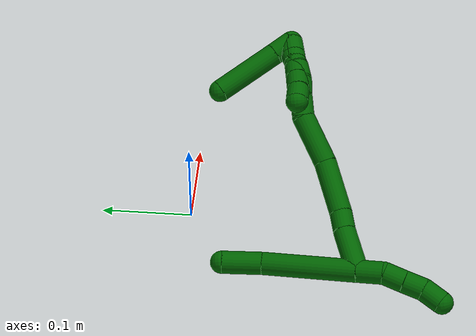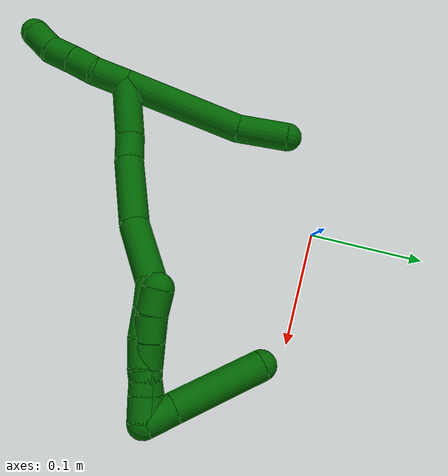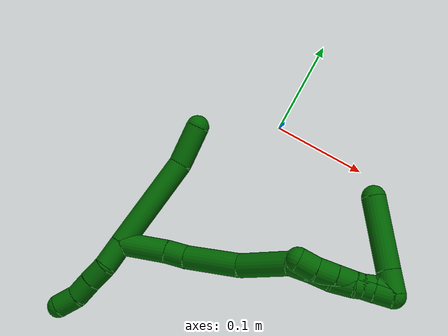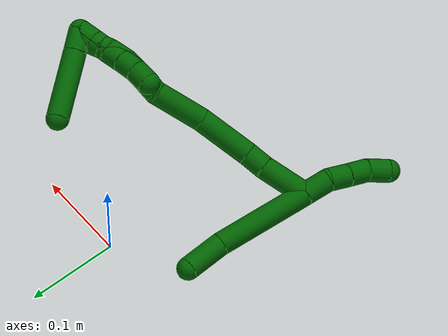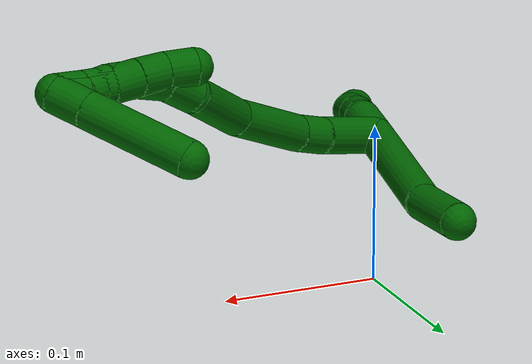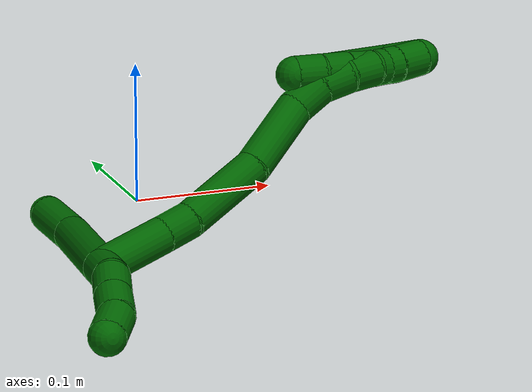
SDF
<sdf version="1.7">
 <world name="default">
  <model name="6">
   <static>0</static>
   <link name="6">
    <collision name="collision-cylinder-e_1_2_8">
     <pose>0.006492 0.005232 -0.052003 -3.04131 0.123583 -1.77869</pose>
     <geometry><cylinder><radius>0.0125</radius><length>0.105333</length></cylinder></geometry>
     <surface>
      <friction><ode><mu>1.16</mu><mu2>1.16</mu2><slip1>0</slip1><slip2>0</slip2></ode></friction>
      <contact><ode><kp>1e+06</kp><kd>1</kd><max_vel>0</max_vel><min_depth>0.001</min_depth></ode></contact>
     </surface>
    </collision>
    <visual name="visual-cylinder-e_1_2_8">
     <pose>0.006492 0.005232 -0.052003 -3.04131 0.123583 -1.77869</pose>
     <geometry><cylinder><radius>0.0125</radius><length>0.105333</length></cylinder></geometry>
     <material><ambient>0 0.392157 0.003922 1</ambient></material>
    </visual>
    <collision name="collision-cylinder-e_2_8_6">
     <pose>0.011814 0.016071 -0.125591 -2.88749 -0.05243 0.404915</pose>
     <geometry><cylinder><radius>0.0125</radius><length>0.044667</length></cylinder></geometry>
     <surface>
      <friction><ode><mu>1.16</mu><mu2>1.16</mu2><slip1>0</slip1><slip2>0</slip2></ode></friction>
      <contact><ode><kp>1e+06</kp><kd>1</kd><max_vel>0</max_vel><min_depth>0.001</min_depth></ode></contact>
     </surface>
    </collision>
    <visual name="visual-cylinder-e_2_8_6">
     <pose>0.011814 0.016071 -0.125591 -2.88749 -0.05243 0.404915</pose>
     <geometry><cylinder><radius>0.0125</radius><length>0.044667</length></cylinder></geometry>
     <material><ambient>0 0.392157 0.003922 1</ambient></material>
    </visual>
    <collision name="collision-cylinder-e_1_2_9">
     <pose>-0.001646 -0.00152 0.014463 0.1047 -0.112736 -0.005913</pose>
     <geometry><cylinder><radius>0.0125</radius><length>0.029272</length></cylinder></geometry>
     <surface>
      <friction><ode><mu>1.16</mu><mu2>1.16</mu2><slip1>0</slip1><slip2>0</slip2></ode></friction>
      <contact><ode><kp>1e+06</kp><kd>1</kd><max_vel>0</max_vel><min_depth>0.001</min_depth></ode></contact>
     </surface>
    </collision>
    <visual name="visual-cylinder-e_1_2_9">
     <pose>-0.001646 -0.00152 0.014463 0.1047 -0.112736 -0.005913</pose>
     <geometry><cylinder><radius>0.0125</radius><length>0.029272</length></cylinder></geometry>
     <material><ambient>0 0.392157 0.003922 1</ambient></material>
    </visual>
    <collision name="collision-cylinder-e_2_9_10">
     <pose>-0.006713 -0.007409 0.039119 0.404997 -0.299159 -0.061864</pose>
     <geometry><cylinder><radius>0.0125</radius><length>0.023211</length></cylinder></geometry>
     <surface>
      <friction><ode><mu>1.16</mu><mu2>1.16</mu2><slip1>0</slip1><slip2>0</slip2></ode></friction>
      <contact><ode><kp>1e+06</kp><kd>1</kd><max_vel>0</max_vel><min_depth>0.001</min_depth></ode></contact>
     </surface>
    </collision>
    <visual name="visual-cylinder-e_2_9_10">
     <pose>-0.006713 -0.007409 0.039119 0.404997 -0.299159 -0.061864</pose>
     <geometry><cylinder><radius>0.0125</radius><length>0.023211</length></cylinder></geometry>
     <material><ambient>0 0.392157 0.003922 1</ambient></material>
    </visual>
    <collision name="collision-cylinder-e_3_10_11">
     <pose>-0.01314 -0.01647 0.059556 0.429404 -0.26079 -0.057178</pose>
     <geometry><cylinder><radius>0.0125</radius><length>0.023323</length></cylinder></geometry>
     <surface>
      <friction><ode><mu>1.16</mu><mu2>1.16</mu2><slip1>0</slip1><slip2>0</slip2></ode></friction>
      <contact><ode><kp>1e+06</kp><kd>1</kd><max_vel>0</max_vel><min_depth>0.001</min_depth></ode></contact>
     </surface>
    </collision>
    <visual name="visual-cylinder-e_3_10_11">
     <pose>-0.01314 -0.01647 0.059556 0.429404 -0.26079 -0.057178</pose>
     <geometry><cylinder><radius>0.0125</radius><length>0.023323</length></cylinder></geometry>
     <material><ambient>0 0.392157 0.003922 1</ambient></material>
    </visual>
    <collision name="collision-cylinder-e_4_11_5">
     <pose>-0.022764 -0.025319 0.079034 0.423156 -0.578772 -0.127733</pose>
     <geometry><cylinder><radius>0.0125</radius><length>0.024195</length></cylinder></geometry>
     <surface>
      <friction><ode><mu>1.16</mu><mu2>1.16</mu2><slip1>0</slip1><slip2>0</slip2></ode></friction>
      <contact><ode><kp>1e+06</kp><kd>1</kd><max_vel>0</max_vel><min_depth>0.001</min_depth></ode></contact>
     </surface>
    </collision>
    <visual name="visual-cylinder-e_4_11_5">
     <pose>-0.022764 -0.025319 0.079034 0.423156 -0.578772 -0.127733</pose>
     <geometry><cylinder><radius>0.0125</radius><length>0.024195</length></cylinder></geometry>
     <material><ambient>0 0.392157 0.003922 1</ambient></material>
    </visual>
    <collision name="collision-cylinder-e_1_2_12">
     <pose>0.024053 0.004883 -0.007222 -2.5471 1.22306 -2.31786</pose>
     <geometry><cylinder><radius>0.0125</radius><length>0.051168</length></cylinder></geometry>
     <surface>
      <friction><ode><mu>1.16</mu><mu2>1.16</mu2><slip1>0</slip1><slip2>0</slip2></ode></friction>
      <contact><ode><kp>1e+06</kp><kd>1</kd><max_vel>0</max_vel><min_depth>0.001</min_depth></ode></contact>
     </surface>
    </collision>
    <visual name="visual-cylinder-e_1_2_12">
     <pose>0.024053 0.004883 -0.007222 -2.5471 1.22306 -2.31786</pose>
     <geometry><cylinder><radius>0.0125</radius><length>0.051168</length></cylinder></geometry>
     <material><ambient>0 0.392157 0.003922 1</ambient></material>
    </visual>
    <collision name="collision-cylinder-e_2_12_13">
     <pose>0.058891 0.012419 -0.016505 -2.23099 1.26892 -1.96754</pose>
     <geometry><cylinder><radius>0.0125</radius><length>0.022592</length></cylinder></geometry>
     <surface>
      <friction><ode><mu>1.16</mu><mu2>1.16</mu2><slip1>0</slip1><slip2>0</slip2></ode></friction>
      <contact><ode><kp>1e+06</kp><kd>1</kd><max_vel>0</max_vel><min_depth>0.001</min_depth></ode></contact>
     </surface>
    </collision>
    <visual name="visual-cylinder-e_2_12_13">
     <pose>0.058891 0.012419 -0.016505 -2.23099 1.26892 -1.96754</pose>
     <geometry><cylinder><radius>0.0125</radius><length>0.022592</length></cylinder></geometry>
     <material><ambient>0 0.392157 0.003922 1</ambient></material>
    </visual>
    <collision name="collision-cylinder-e_3_13_14">
     <pose>0.096859 0.026578 -0.026394 -2.16832 1.0976 -1.715</pose>
     <geometry><cylinder><radius>0.0125</radius><length>0.061077</length></cylinder></geometry>
     <surface>
      <friction><ode><mu>1.16</mu><mu2>1.16</mu2><slip1>0</slip1><slip2>0</slip2></ode></friction>
      <contact><ode><kp>1e+06</kp><kd>1</kd><max_vel>0</max_vel><min_depth>0.001</min_depth></ode></contact>
     </surface>
    </collision>
    <visual name="visual-cylinder-e_3_13_14">
     <pose>0.096859 0.026578 -0.026394 -2.16832 1.0976 -1.715</pose>
     <geometry><cylinder><radius>0.0125</radius><length>0.061077</length></cylinder></geometry>
     <material><ambient>0 0.392157 0.003922 1</ambient></material>
    </visual>
    <collision name="collision-cylinder-e_4_14_15">
     <pose>0.145888 0.053184 -0.044804 -2.18197 0.86981 -1.45762</pose>
     <geometry><cylinder><radius>0.0125</radius><length>0.057175</length></cylinder></geometry>
     <surface>
      <friction><ode><mu>1.16</mu><mu2>1.16</mu2><slip1>0</slip1><slip2>0</slip2></ode></friction>
      <contact><ode><kp>1e+06</kp><kd>1</kd><max_vel>0</max_vel><min_depth>0.001</min_depth></ode></contact>
     </surface>
    </collision>
    <visual name="visual-cylinder-e_4_14_15">
     <pose>0.145888 0.053184 -0.044804 -2.18197 0.86981 -1.45762</pose>
     <geometry><cylinder><radius>0.0125</radius><length>0.057175</length></cylinder></geometry>
     <material><ambient>0 0.392157 0.003922 1</ambient></material>
    </visual>
    <collision name="collision-cylinder-e_5_15_16">
     <pose>0.178504 0.073759 -0.056083 -1.69765 1.0972 -1.21349</pose>
     <geometry><cylinder><radius>0.0125</radius><length>0.024203</length></cylinder></geometry>
     <surface>
      <friction><ode><mu>1.16</mu><mu2>1.16</mu2><slip1>0</slip1><slip2>0</slip2></ode></friction>
      <contact><ode><kp>1e+06</kp><kd>1</kd><max_vel>0</max_vel><min_depth>0.001</min_depth></ode></contact>
     </surface>
    </collision>
    <visual name="visual-cylinder-e_5_15_16">
     <pose>0.178504 0.073759 -0.056083 -1.69765 1.0972 -1.21349</pose>
     <geometry><cylinder><radius>0.0125</radius><length>0.024203</length></cylinder></geometry>
     <material><ambient>0 0.392157 0.003922 1</ambient></material>
    </visual>
    <collision name="collision-cylinder-e_6_16_17">
     <pose>0.199904 0.080791 -0.05741 -1.95423 1.41412 -1.80451</pose>
     <geometry><cylinder><radius>0.0125</radius><length>0.021525</length></cylinder></geometry>
     <surface>
      <friction><ode><mu>1.16</mu><mu2>1.16</mu2><slip1>0</slip1><slip2>0</slip2></ode></friction>
      <contact><ode><kp>1e+06</kp><kd>1</kd><max_vel>0</max_vel><min_depth>0.001</min_depth></ode></contact>
     </surface>
    </collision>
    <visual name="visual-cylinder-e_6_16_17">
     <pose>0.199904 0.080791 -0.05741 -1.95423 1.41412 -1.80451</pose>
     <geometry><cylinder><radius>0.0125</radius><length>0.021525</length></cylinder></geometry>
     <material><ambient>0 0.392157 0.003922 1</ambient></material>
    </visual>
    <collision name="collision-cylinder-e_7_17_18">
     <pose>0.220901 0.082618 -0.0606 -3.03693 1.32723 -3.00782</pose>
     <geometry><cylinder><radius>0.0125</radius><length>0.021362</length></cylinder></geometry>
     <surface>
      <friction><ode><mu>1.16</mu><mu2>1.16</mu2><slip1>0</slip1><slip2>0</slip2></ode></friction>
      <contact><ode><kp>1e+06</kp><kd>1</kd><max_vel>0</max_vel><min_depth>0.001</min_depth></ode></contact>
     </surface>
    </collision>
    <visual name="visual-cylinder-e_7_17_18">
     <pose>0.220901 0.082618 -0.0606 -3.03693 1.32723 -3.00782</pose>
     <geometry><cylinder><radius>0.0125</radius><length>0.021362</length></cylinder></geometry>
     <material><ambient>0 0.392157 0.003922 1</ambient></material>
    </visual>
    <collision name="collision-cylinder-e_8_18_19">
     <pose>0.240697 0.082019 -0.067111 2.92534 1.16569 2.81521</pose>
     <geometry><cylinder><radius>0.0125</radius><length>0.020523</length></cylinder></geometry>
     <surface>
      <friction><ode><mu>1.16</mu><mu2>1.16</mu2><slip1>0</slip1><slip2>0</slip2></ode></friction>
      <contact><ode><kp>1e+06</kp><kd>1</kd><max_vel>0</max_vel><min_depth>0.001</min_depth></ode></contact>
     </surface>
    </collision>
    <visual name="visual-cylinder-e_8_18_19">
     <pose>0.240697 0.082019 -0.067111 2.92534 1.16569 2.81521</pose>
     <geometry><cylinder><radius>0.0125</radius><length>0.020523</length></cylinder></geometry>
     <material><ambient>0 0.392157 0.003922 1</ambient></material>
    </visual>
    <collision name="collision-cylinder-e_9_19_1">
     <pose>0.260258 0.081781 -0.071949 -2.52441 1.46379 -2.45961</pose>
     <geometry><cylinder><radius>0.0125</radius><length>0.020375</length></cylinder></geometry>
     <surface>
      <friction><ode><mu>1.16</mu><mu2>1.16</mu2><slip1>0</slip1><slip2>0</slip2></ode></friction>
      <contact><ode><kp>1e+06</kp><kd>1</kd><max_vel>0</max_vel><min_depth>0.001</min_depth></ode></contact>
     </surface>
    </collision>
    <visual name="visual-cylinder-e_9_19_1">
     <pose>0.260258 0.081781 -0.071949 -2.52441 1.46379 -2.45961</pose>
     <geometry><cylinder><radius>0.0125</radius><length>0.020375</length></cylinder></geometry>
     <material><ambient>0 0.392157 0.003922 1</ambient></material>
    </visual>
    <collision name="collision-cylinder-e_1_1_20">
     <pose>0.260604 0.082148 -0.07078 0.12701 -1.36203 -0.102969</pose>
     <geometry><cylinder><radius>0.0125</radius><length>0.02</length></cylinder></geometry>
     <surface>
      <friction><ode><mu>1.16</mu><mu2>1.16</mu2><slip1>0</slip1><slip2>0</slip2></ode></friction>
      <contact><ode><kp>1e+06</kp><kd>1</kd><max_vel>0</max_vel><min_depth>0.001</min_depth></ode></contact>
     </surface>
    </collision>
    <visual name="visual-cylinder-e_1_1_20">
     <pose>0.260604 0.082148 -0.07078 0.12701 -1.36203 -0.102969</pose>
     <geometry><cylinder><radius>0.0125</radius><length>0.02</length></cylinder></geometry>
     <material><ambient>0 0.392157 0.003922 1</ambient></material>
    </visual>
    <collision name="collision-cylinder-e_2_20_21">
     <pose>0.240995 0.082103 -0.066882 -0.117425 -1.38419 0.097364</pose>
     <geometry><cylinder><radius>0.0125</radius><length>0.02</length></cylinder></geometry>
     <surface>
      <friction><ode><mu>1.16</mu><mu2>1.16</mu2><slip1>0</slip1><slip2>0</slip2></ode></friction>
      <contact><ode><kp>1e+06</kp><kd>1</kd><max_vel>0</max_vel><min_depth>0.001</min_depth></ode></contact>
     </surface>
    </collision>
    <visual name="visual-cylinder-e_2_20_21">
     <pose>0.240995 0.082103 -0.066882 -0.117425 -1.38419 0.097364</pose>
     <geometry><cylinder><radius>0.0125</radius><length>0.02</length></cylinder></geometry>
     <material><ambient>0 0.392157 0.003922 1</ambient></material>
    </visual>
    <collision name="collision-cylinder-e_3_21_22">
     <pose>0.221452 0.083909 -0.063291 -0.737384 -1.33228 0.589647</pose>
     <geometry><cylinder><radius>0.0125</radius><length>0.02</length></cylinder></geometry>
     <surface>
      <friction><ode><mu>1.16</mu><mu2>1.16</mu2><slip1>0</slip1><slip2>0</slip2></ode></friction>
      <contact><ode><kp>1e+06</kp><kd>1</kd><max_vel>0</max_vel><min_depth>0.001</min_depth></ode></contact>
     </surface>
    </collision>
    <visual name="visual-cylinder-e_3_21_22">
     <pose>0.221452 0.083909 -0.063291 -0.737384 -1.33228 0.589647</pose>
     <geometry><cylinder><radius>0.0125</radius><length>0.02</length></cylinder></geometry>
     <material><ambient>0 0.392157 0.003922 1</ambient></material>
    </visual>
    <collision name="collision-cylinder-e_4_22_23">
     <pose>0.20194 0.086709 -0.059932 -0.645137 -1.36796 0.532075</pose>
     <geometry><cylinder><radius>0.0125</radius><length>0.02</length></cylinder></geometry>
     <surface>
      <friction><ode><mu>1.16</mu><mu2>1.16</mu2><slip1>0</slip1><slip2>0</slip2></ode></friction>
      <contact><ode><kp>1e+06</kp><kd>1</kd><max_vel>0</max_vel><min_depth>0.001</min_depth></ode></contact>
     </surface>
    </collision>
    <visual name="visual-cylinder-e_4_22_23">
     <pose>0.20194 0.086709 -0.059932 -0.645137 -1.36796 0.532075</pose>
     <geometry><cylinder><radius>0.0125</radius><length>0.02</length></cylinder></geometry>
     <material><ambient>0 0.392157 0.003922 1</ambient></material>
    </visual>
    <collision name="collision-cylinder-e_5_23_4">
     <pose>0.182213 0.089069 -0.058135 -1.40886 -1.45417 1.29483</pose>
     <geometry><cylinder><radius>0.0125</radius><length>0.02</length></cylinder></geometry>
     <surface>
      <friction><ode><mu>1.16</mu><mu2>1.16</mu2><slip1>0</slip1><slip2>0</slip2></ode></friction>
      <contact><ode><kp>1e+06</kp><kd>1</kd><max_vel>0</max_vel><min_depth>0.001</min_depth></ode></contact>
     </surface>
    </collision>
    <visual name="visual-cylinder-e_5_23_4">
     <pose>0.182213 0.089069 -0.058135 -1.40886 -1.45417 1.29483</pose>
     <geometry><cylinder><radius>0.0125</radius><length>0.02</length></cylinder></geometry>
     <material><ambient>0 0.392157 0.003922 1</ambient></material>
    </visual>
    <collision name="collision-cylinder-e_1_1_24">
     <pose>0.262822 0.081927 -0.082592 3.092 -0.65897 -2.99678</pose>
     <geometry><cylinder><radius>0.0125</radius><length>0.02471</length></cylinder></geometry>
     <surface>
      <friction><ode><mu>1.16</mu><mu2>1.16</mu2><slip1>0</slip1><slip2>0</slip2></ode></friction>
      <contact><ode><kp>1e+06</kp><kd>1</kd><max_vel>0</max_vel><min_depth>0.001</min_depth></ode></contact>
     </surface>
    </collision>
    <visual name="visual-cylinder-e_1_1_24">
     <pose>0.262822 0.081927 -0.082592 3.092 -0.65897 -2.99678</pose>
     <geometry><cylinder><radius>0.0125</radius><length>0.02471</length></cylinder></geometry>
     <material><ambient>0 0.392157 0.003922 1</ambient></material>
    </visual>
    <collision name="collision-cylinder-e_2_24_3">
     <pose>0.232441 0.080311 -0.12227 3.1038 -0.651142 -3.02976</pose>
     <geometry><cylinder><radius>0.0125</radius><length>0.07529</length></cylinder></geometry>
     <surface>
      <friction><ode><mu>1.16</mu><mu2>1.16</mu2><slip1>0</slip1><slip2>0</slip2></ode></friction>
      <contact><ode><kp>1e+06</kp><kd>1</kd><max_vel>0</max_vel><min_depth>0.001</min_depth></ode></contact>
     </surface>
    </collision>
    <visual name="visual-cylinder-e_2_24_3">
     <pose>0.232441 0.080311 -0.12227 3.1038 -0.651142 -3.02976</pose>
     <geometry><cylinder><radius>0.0125</radius><length>0.07529</length></cylinder></geometry>
     <material><ambient>0 0.392157 0.003922 1</ambient></material>
    </visual>
    <collision name="collision-sphere-3">
     <pose>0.209624 0.07918 -0.152191 0 -0 0</pose>
     <geometry><sphere><radius>0.0125</radius></sphere></geometry>
     <surface>
      <friction><ode><mu>1.16</mu><mu2>1.16</mu2><slip1>0</slip1><slip2>0</slip2></ode></friction>
      <contact><ode><kp>1e+06</kp><kd>1</kd><max_vel>0</max_vel><min_depth>0.001</min_depth></ode></contact>
     </surface>
    </collision>
    <visual name="visual-sphere-3">
     <pose>0.209624 0.07918 -0.152191 0 -0 0</pose>
     <geometry><sphere><radius>0.0125</radius></sphere></geometry>
     <material><ambient>0 0.392157 0.003922 1</ambient></material>
    </visual>
    <collision name="collision-sphere-24">
     <pose>0.255257 0.081442 -0.092349 0 -0 0</pose>
     <geometry><sphere><radius>0.0125</radius></sphere></geometry>
     <surface>
      <friction><ode><mu>1.16</mu><mu2>1.16</mu2><slip1>0</slip1><slip2>0</slip2></ode></friction>
      <contact><ode><kp>1e+06</kp><kd>1</kd><max_vel>0</max_vel><min_depth>0.001</min_depth></ode></contact>
     </surface>
    </collision>
    <visual name="visual-sphere-24">
     <pose>0.255257 0.081442 -0.092349 0 -0 0</pose>
     <geometry><sphere><radius>0.0125</radius></sphere></geometry>
     <material><ambient>0 0.392157 0.003922 1</ambient></material>
    </visual>
    <collision name="collision-sphere-4">
     <pose>0.172281 0.090217 -0.057947 0 -0 0</pose>
     <geometry><sphere><radius>0.0125</radius></sphere></geometry>
     <surface>
      <friction><ode><mu>1.16</mu><mu2>1.16</mu2><slip1>0</slip1><slip2>0</slip2></ode></friction>
      <contact><ode><kp>1e+06</kp><kd>1</kd><max_vel>0</max_vel><min_depth>0.001</min_depth></ode></contact>
     </surface>
    </collision>
    <visual name="visual-sphere-4">
     <pose>0.172281 0.090217 -0.057947 0 -0 0</pose>
     <geometry><sphere><radius>0.0125</radius></sphere></geometry>
     <material><ambient>0 0.392157 0.003922 1</ambient></material>
    </visual>
    <collision name="collision-sphere-23">
     <pose>0.192145 0.08792 -0.058322 0 -0 0</pose>
     <geometry><sphere><radius>0.0125</radius></sphere></geometry>
     <surface>
      <friction><ode><mu>1.16</mu><mu2>1.16</mu2><slip1>0</slip1><slip2>0</slip2></ode></friction>
      <contact><ode><kp>1e+06</kp><kd>1</kd><max_vel>0</max_vel><min_depth>0.001</min_depth></ode></contact>
     </surface>
    </collision>
    <visual name="visual-sphere-23">
     <pose>0.192145 0.08792 -0.058322 0 -0 0</pose>
     <geometry><sphere><radius>0.0125</radius></sphere></geometry>
     <material><ambient>0 0.392157 0.003922 1</ambient></material>
    </visual>
    <collision name="collision-sphere-22">
     <pose>0.211735 0.085498 -0.061542 0 -0 0</pose>
     <geometry><sphere><radius>0.0125</radius></sphere></geometry>
     <surface>
      <friction><ode><mu>1.16</mu><mu2>1.16</mu2><slip1>0</slip1><slip2>0</slip2></ode></friction>
      <contact><ode><kp>1e+06</kp><kd>1</kd><max_vel>0</max_vel><min_depth>0.001</min_depth></ode></contact>
     </surface>
    </collision>
    <visual name="visual-sphere-22">
     <pose>0.211735 0.085498 -0.061542 0 -0 0</pose>
     <geometry><sphere><radius>0.0125</radius></sphere></geometry>
     <material><ambient>0 0.392157 0.003922 1</ambient></material>
    </visual>
    <collision name="collision-sphere-21">
     <pose>0.231169 0.082321 -0.065039 0 -0 0</pose>
     <geometry><sphere><radius>0.0125</radius></sphere></geometry>
     <surface>
      <friction><ode><mu>1.16</mu><mu2>1.16</mu2><slip1>0</slip1><slip2>0</slip2></ode></friction>
      <contact><ode><kp>1e+06</kp><kd>1</kd><max_vel>0</max_vel><min_depth>0.001</min_depth></ode></contact>
     </surface>
    </collision>
    <visual name="visual-sphere-21">
     <pose>0.231169 0.082321 -0.065039 0 -0 0</pose>
     <geometry><sphere><radius>0.0125</radius></sphere></geometry>
     <material><ambient>0 0.392157 0.003922 1</ambient></material>
    </visual>
    <collision name="collision-sphere-20">
     <pose>0.250821 0.081886 -0.068724 0 -0 0</pose>
     <geometry><sphere><radius>0.0125</radius></sphere></geometry>
     <surface>
      <friction><ode><mu>1.16</mu><mu2>1.16</mu2><slip1>0</slip1><slip2>0</slip2></ode></friction>
      <contact><ode><kp>1e+06</kp><kd>1</kd><max_vel>0</max_vel><min_depth>0.001</min_depth></ode></contact>
     </surface>
    </collision>
    <visual name="visual-sphere-20">
     <pose>0.250821 0.081886 -0.068724 0 -0 0</pose>
     <geometry><sphere><radius>0.0125</radius></sphere></geometry>
     <material><ambient>0 0.392157 0.003922 1</ambient></material>
    </visual>
    <collision name="collision-sphere-11">
     <pose>-0.016147 -0.02116 0.0698 0 -0 0</pose>
     <geometry><sphere><radius>0.0125</radius></sphere></geometry>
     <surface>
      <friction><ode><mu>1.16</mu><mu2>1.16</mu2><slip1>0</slip1><slip2>0</slip2></ode></friction>
      <contact><ode><kp>1e+06</kp><kd>1</kd><max_vel>0</max_vel><min_depth>0.001</min_depth></ode></contact>
     </surface>
    </collision>
    <visual name="visual-sphere-11">
     <pose>-0.016147 -0.02116 0.0698 0 -0 0</pose>
     <geometry><sphere><radius>0.0125</radius></sphere></geometry>
     <material><ambient>0 0.392157 0.003922 1</ambient></material>
    </visual>
    <collision name="collision-sphere-10">
     <pose>-0.010134 -0.011779 0.049312 0 -0 0</pose>
     <geometry><sphere><radius>0.0125</radius></sphere></geometry>
     <surface>
      <friction><ode><mu>1.16</mu><mu2>1.16</mu2><slip1>0</slip1><slip2>0</slip2></ode></friction>
      <contact><ode><kp>1e+06</kp><kd>1</kd><max_vel>0</max_vel><min_depth>0.001</min_depth></ode></contact>
     </surface>
    </collision>
    <visual name="visual-sphere-10">
     <pose>-0.010134 -0.011779 0.049312 0 -0 0</pose>
     <geometry><sphere><radius>0.0125</radius></sphere></geometry>
     <material><ambient>0 0.392157 0.003922 1</ambient></material>
    </visual>
    <collision name="collision-sphere-6">
     <pose>0.010644 0.021677 -0.147178 0 -0 0</pose>
     <geometry><sphere><radius>0.0125</radius></sphere></geometry>
     <surface>
      <friction><ode><mu>1.16</mu><mu2>1.16</mu2><slip1>0</slip1><slip2>0</slip2></ode></friction>
      <contact><ode><kp>1e+06</kp><kd>1</kd><max_vel>0</max_vel><min_depth>0.001</min_depth></ode></contact>
     </surface>
    </collision>
    <visual name="visual-sphere-6">
     <pose>0.010644 0.021677 -0.147178 0 -0 0</pose>
     <geometry><sphere><radius>0.0125</radius></sphere></geometry>
     <material><ambient>0 0.392157 0.003922 1</ambient></material>
    </visual>
    <collision name="collision-sphere-9">
     <pose>-0.003293 -0.00304 0.028927 0 -0 0</pose>
     <geometry><sphere><radius>0.0125</radius></sphere></geometry>
     <surface>
      <friction><ode><mu>1.16</mu><mu2>1.16</mu2><slip1>0</slip1><slip2>0</slip2></ode></friction>
      <contact><ode><kp>1e+06</kp><kd>1</kd><max_vel>0</max_vel><min_depth>0.001</min_depth></ode></contact>
     </surface>
    </collision>
    <visual name="visual-sphere-9">
     <pose>-0.003293 -0.00304 0.028927 0 -0 0</pose>
     <geometry><sphere><radius>0.0125</radius></sphere></geometry>
     <material><ambient>0 0.392157 0.003922 1</ambient></material>
    </visual>
    <collision name="collision-sphere-2">
     <geometry><sphere><radius>0.0125</radius></sphere></geometry>
     <surface>
      <friction><ode><mu>1.16</mu><mu2>1.16</mu2><slip1>0</slip1><slip2>0</slip2></ode></friction>
      <contact><ode><kp>1e+06</kp><kd>1</kd><max_vel>0</max_vel><min_depth>0.001</min_depth></ode></contact>
     </surface>
    </collision>
    <visual name="visual-sphere-2">
     <geometry><sphere><radius>0.0125</radius></sphere></geometry>
     <material><ambient>0 0.392157 0.003922 1</ambient></material>
    </visual>
    <collision name="collision-sphere-19">
     <pose>0.250128 0.081151 -0.071061 0 -0 0</pose>
     <geometry><sphere><radius>0.0125</radius></sphere></geometry>
     <surface>
      <friction><ode><mu>1.16</mu><mu2>1.16</mu2><slip1>0</slip1><slip2>0</slip2></ode></friction>
      <contact><ode><kp>1e+06</kp><kd>1</kd><max_vel>0</max_vel><min_depth>0.001</min_depth></ode></contact>
     </surface>
    </collision>
    <visual name="visual-sphere-19">
     <pose>0.250128 0.081151 -0.071061 0 -0 0</pose>
     <geometry><sphere><radius>0.0125</radius></sphere></geometry>
     <material><ambient>0 0.392157 0.003922 1</ambient></material>
    </visual>
    <collision name="collision-sphere-8">
     <pose>0.012984 0.010464 -0.104005 0 -0 0</pose>
     <geometry><sphere><radius>0.0125</radius></sphere></geometry>
     <surface>
      <friction><ode><mu>1.16</mu><mu2>1.16</mu2><slip1>0</slip1><slip2>0</slip2></ode></friction>
      <contact><ode><kp>1e+06</kp><kd>1</kd><max_vel>0</max_vel><min_depth>0.001</min_depth></ode></contact>
     </surface>
    </collision>
    <visual name="visual-sphere-8">
     <pose>0.012984 0.010464 -0.104005 0 -0 0</pose>
     <geometry><sphere><radius>0.0125</radius></sphere></geometry>
     <material><ambient>0 0.392157 0.003922 1</ambient></material>
    </visual>
    <collision name="collision-sphere-5">
     <pose>-0.029382 -0.029478 0.088268 0 -0 0</pose>
     <geometry><sphere><radius>0.0125</radius></sphere></geometry>
     <surface>
      <friction><ode><mu>1.16</mu><mu2>1.16</mu2><slip1>0</slip1><slip2>0</slip2></ode></friction>
      <contact><ode><kp>1e+06</kp><kd>1</kd><max_vel>0</max_vel><min_depth>0.001</min_depth></ode></contact>
     </surface>
    </collision>
    <visual name="visual-sphere-5">
     <pose>-0.029382 -0.029478 0.088268 0 -0 0</pose>
     <geometry><sphere><radius>0.0125</radius></sphere></geometry>
     <material><ambient>0 0.392157 0.003922 1</ambient></material>
    </visual>
    <collision name="collision-sphere-12">
     <pose>0.048105 0.009766 -0.014445 0 -0 0</pose>
     <geometry><sphere><radius>0.0125</radius></sphere></geometry>
     <surface>
      <friction><ode><mu>1.16</mu><mu2>1.16</mu2><slip1>0</slip1><slip2>0</slip2></ode></friction>
      <contact><ode><kp>1e+06</kp><kd>1</kd><max_vel>0</max_vel><min_depth>0.001</min_depth></ode></contact>
     </surface>
    </collision>
    <visual name="visual-sphere-12">
     <pose>0.048105 0.009766 -0.014445 0 -0 0</pose>
     <geometry><sphere><radius>0.0125</radius></sphere></geometry>
     <material><ambient>0 0.392157 0.003922 1</ambient></material>
    </visual>
    <collision name="collision-sphere-13">
     <pose>0.069676 0.015071 -0.018564 0 -0 0</pose>
     <geometry><sphere><radius>0.0125</radius></sphere></geometry>
     <surface>
      <friction><ode><mu>1.16</mu><mu2>1.16</mu2><slip1>0</slip1><slip2>0</slip2></ode></friction>
      <contact><ode><kp>1e+06</kp><kd>1</kd><max_vel>0</max_vel><min_depth>0.001</min_depth></ode></contact>
     </surface>
    </collision>
    <visual name="visual-sphere-13">
     <pose>0.069676 0.015071 -0.018564 0 -0 0</pose>
     <geometry><sphere><radius>0.0125</radius></sphere></geometry>
     <material><ambient>0 0.392157 0.003922 1</ambient></material>
    </visual>
    <collision name="collision-sphere-14">
     <pose>0.124042 0.038084 -0.034224 0 -0 0</pose>
     <geometry><sphere><radius>0.0125</radius></sphere></geometry>
     <surface>
      <friction><ode><mu>1.16</mu><mu2>1.16</mu2><slip1>0</slip1><slip2>0</slip2></ode></friction>
      <contact><ode><kp>1e+06</kp><kd>1</kd><max_vel>0</max_vel><min_depth>0.001</min_depth></ode></contact>
     </surface>
    </collision>
    <visual name="visual-sphere-14">
     <pose>0.124042 0.038084 -0.034224 0 -0 0</pose>
     <geometry><sphere><radius>0.0125</radius></sphere></geometry>
     <material><ambient>0 0.392157 0.003922 1</ambient></material>
    </visual>
    <collision name="collision-sphere-15">
     <pose>0.167735 0.068284 -0.055385 0 -0 0</pose>
     <geometry><sphere><radius>0.0125</radius></sphere></geometry>
     <surface>
      <friction><ode><mu>1.16</mu><mu2>1.16</mu2><slip1>0</slip1><slip2>0</slip2></ode></friction>
      <contact><ode><kp>1e+06</kp><kd>1</kd><max_vel>0</max_vel><min_depth>0.001</min_depth></ode></contact>
     </surface>
    </collision>
    <visual name="visual-sphere-15">
     <pose>0.167735 0.068284 -0.055385 0 -0 0</pose>
     <geometry><sphere><radius>0.0125</radius></sphere></geometry>
     <material><ambient>0 0.392157 0.003922 1</ambient></material>
    </visual>
    <collision name="collision-sphere-16">
     <pose>0.189274 0.079234 -0.056781 0 -0 0</pose>
     <geometry><sphere><radius>0.0125</radius></sphere></geometry>
     <surface>
      <friction><ode><mu>1.16</mu><mu2>1.16</mu2><slip1>0</slip1><slip2>0</slip2></ode></friction>
      <contact><ode><kp>1e+06</kp><kd>1</kd><max_vel>0</max_vel><min_depth>0.001</min_depth></ode></contact>
     </surface>
    </collision>
    <visual name="visual-sphere-16">
     <pose>0.189274 0.079234 -0.056781 0 -0 0</pose>
     <geometry><sphere><radius>0.0125</radius></sphere></geometry>
     <material><ambient>0 0.392157 0.003922 1</ambient></material>
    </visual>
    <collision name="collision-sphere-17">
     <pose>0.210535 0.082349 -0.058038 0 -0 0</pose>
     <geometry><sphere><radius>0.0125</radius></sphere></geometry>
     <surface>
      <friction><ode><mu>1.16</mu><mu2>1.16</mu2><slip1>0</slip1><slip2>0</slip2></ode></friction>
      <contact><ode><kp>1e+06</kp><kd>1</kd><max_vel>0</max_vel><min_depth>0.001</min_depth></ode></contact>
     </surface>
    </collision>
    <visual name="visual-sphere-17">
     <pose>0.210535 0.082349 -0.058038 0 -0 0</pose>
     <geometry><sphere><radius>0.0125</radius></sphere></geometry>
     <material><ambient>0 0.392157 0.003922 1</ambient></material>
    </visual>
    <collision name="collision-sphere-18">
     <pose>0.231266 0.082887 -0.063161 0 -0 0</pose>
     <geometry><sphere><radius>0.0125</radius></sphere></geometry>
     <surface>
      <friction><ode><mu>1.16</mu><mu2>1.16</mu2><slip1>0</slip1><slip2>0</slip2></ode></friction>
      <contact><ode><kp>1e+06</kp><kd>1</kd><max_vel>0</max_vel><min_depth>0.001</min_depth></ode></contact>
     </surface>
    </collision>
    <visual name="visual-sphere-18">
     <pose>0.231266 0.082887 -0.063161 0 -0 0</pose>
     <geometry><sphere><radius>0.0125</radius></sphere></geometry>
     <material><ambient>0 0.392157 0.003922 1</ambient></material>
    </visual>
    <collision name="collision-sphere-1">
     <pose>0.270387 0.082411 -0.072836 0 -0 0</pose>
     <geometry><sphere><radius>0.0125</radius></sphere></geometry>
     <surface>
      <friction><ode><mu>1.16</mu><mu2>1.16</mu2><slip1>0</slip1><slip2>0</slip2></ode></friction>
      <contact><ode><kp>1e+06</kp><kd>1</kd><max_vel>0</max_vel><min_depth>0.001</min_depth></ode></contact>
     </surface>
    </collision>
    <visual name="visual-sphere-1">
     <pose>0.270387 0.082411 -0.072836 0 -0 0</pose>
     <geometry><sphere><radius>0.0125</radius></sphere></geometry>
     <material><ambient>0 0.392157 0.003922 1</ambient></material>
    </visual>
    <inertial>
     <pose>0.115589 0.040585 -0.047638 0 -0 0</pose>
     <mass>0.75</mass>
     <inertia><ixx>-0.000156</ixx><ixy>0</ixy><ixz>0</ixz><iyy>1e-06</iyy><iyz>0</iyz><izz>-7.8e-05</izz></inertia>
    </inertial>
   </link>
   <pose>-0.089741 -0.189947 0.023913 1.34181 -0.098465 0.005173</pose>
  </model>
 </world>
</sdf>
